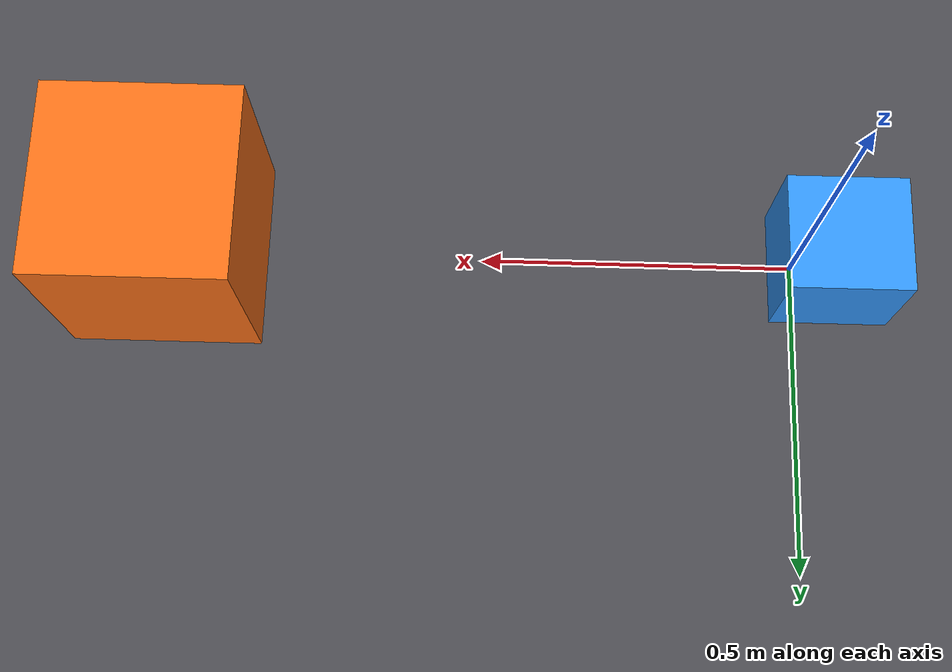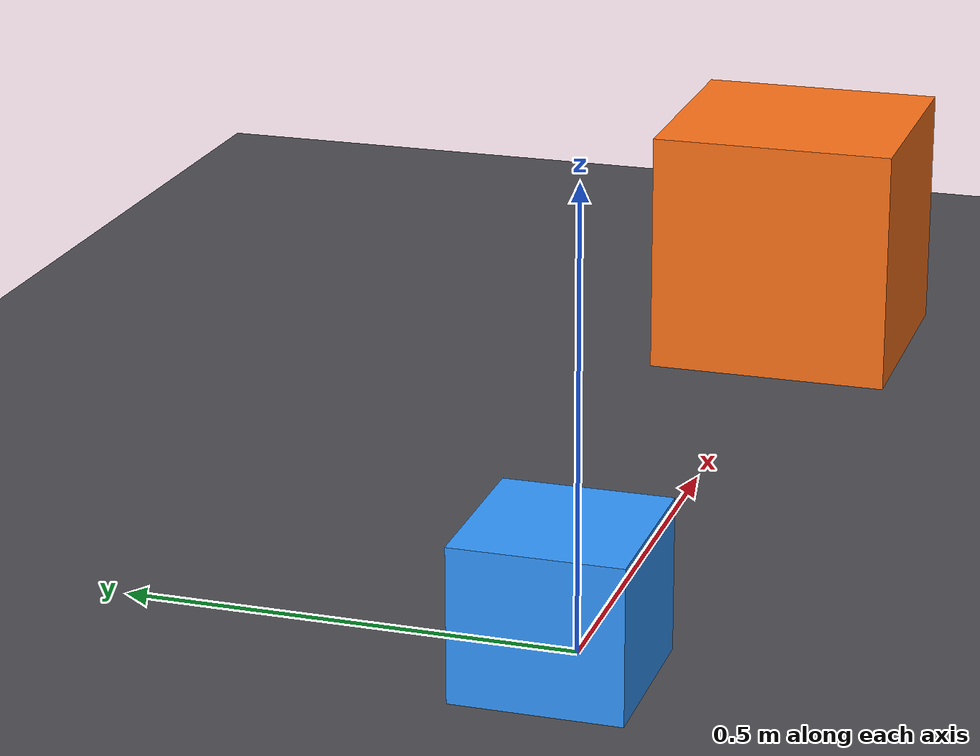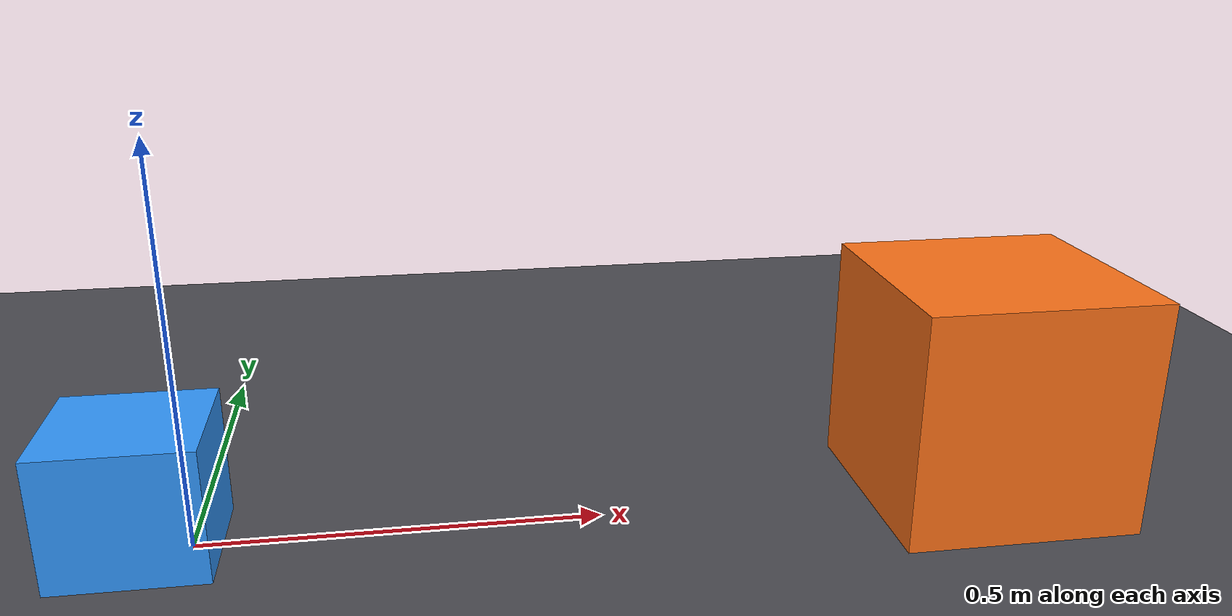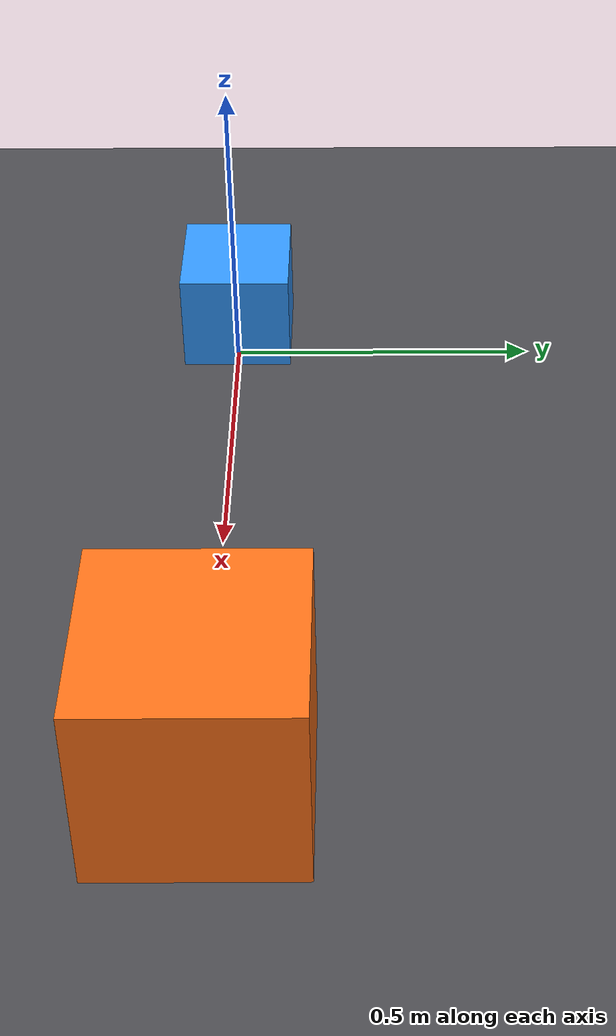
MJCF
<mujoco model="innate_sim_drive_test">

  <option timestep="0.005" gravity="0 0 -9.81"/>

  <worldbody>
    <geom name="ground" type="plane" size="5 5 0.1" friction="0.9 0.01 0.001" rgba="0.3 0.3 0.32 1"/>

    <!-- Fixed obstacle: a plain geom with no body/freejoint never moves, so
         the scene can draw it once at this same position. -->
    <geom name="obstacle" type="box" size="0.15 0.15 0.15" pos="1.0 0 0.15"
          friction="0.9 0.01 0.001" rgba="1 0.45 0.1 1"/>

    <!-- Free-floating collision box standing in for the MARS base -- same
         box size/offset as world.xml's robot_base. -->
    <body name="robot_base" pos="0 0 0">
      <freejoint name="base_free"/>
      <inertial pos="-0.0587 0 0.0838" mass="3.0" diaginertia="0.03 0.03 0.02"/>
      <geom name="base_collision" type="box" size="0.0939 0.091 0.0838" pos="-0.0587 0 0.0838"
            friction="0.9 0.01 0.001" rgba="0.2 0.6 1 1"/>
    </body>
  </worldbody>
</mujoco>
